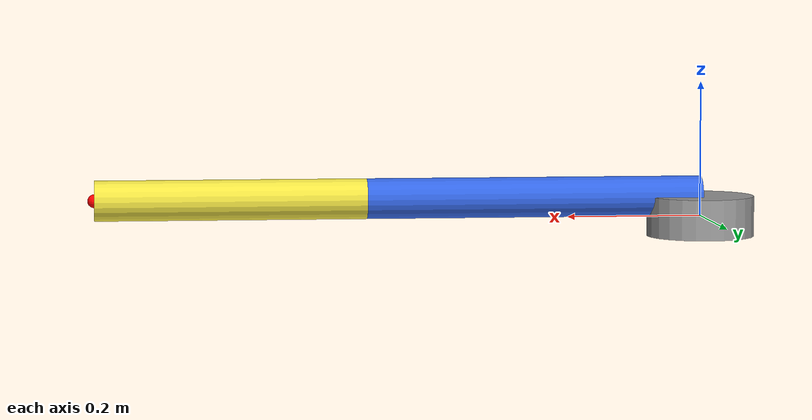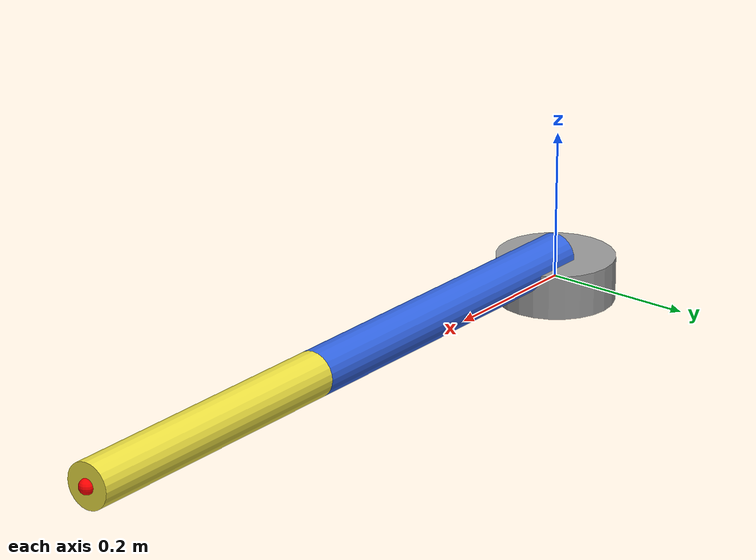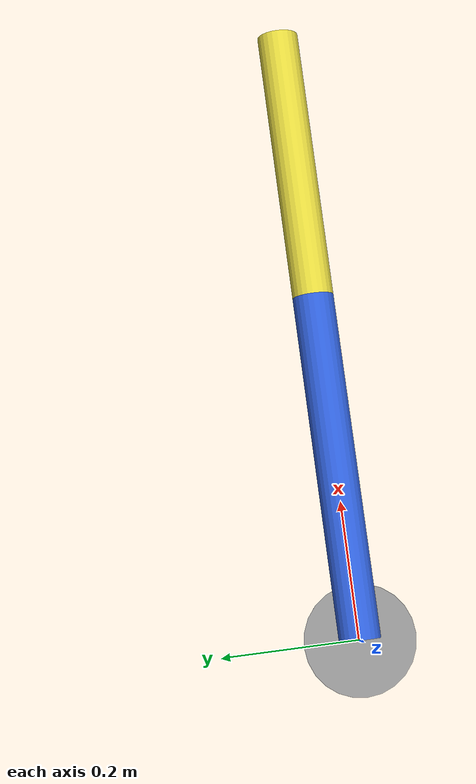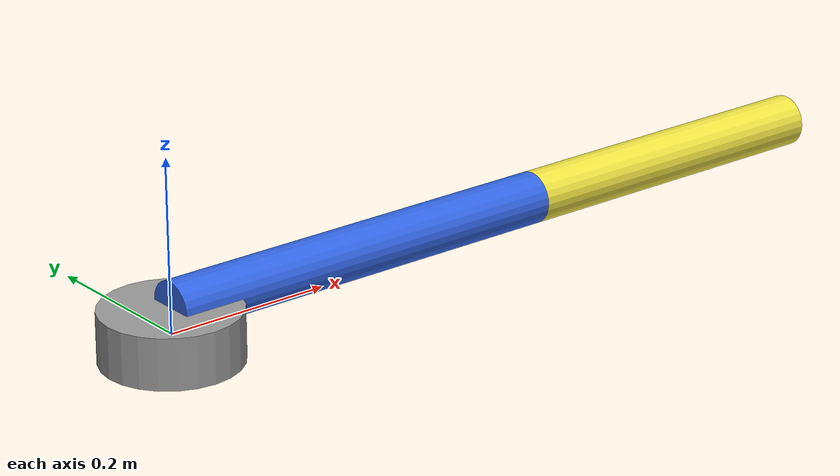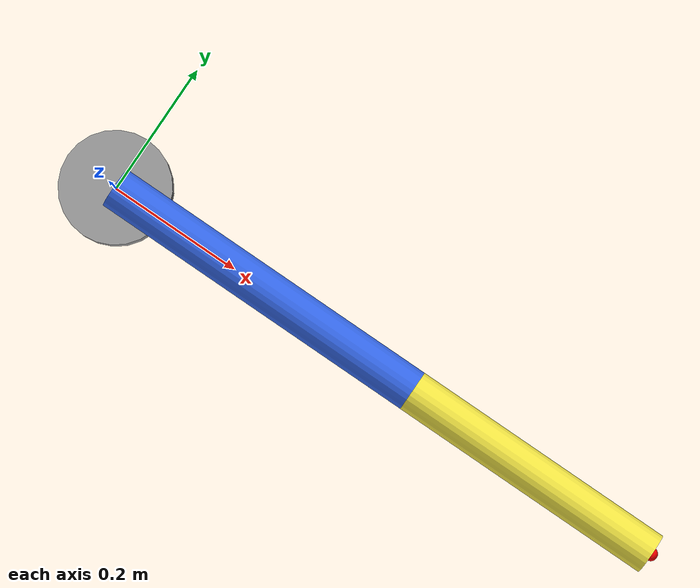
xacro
<?xml version="1.0"?>
<robot xmlns:xacro="http://www.ros.org/wiki/xacro" name="rr_arm">
<xacro:arg name="is_ignition" default="true"/>
<xacro:include filename="$(find rr_arm)/urdf/rr_arm_gazebo.xacro"/>

  <!-- Include ros2_control Plugins -->
<xacro:include filename="$(find rr_arm)/urdf/rr_arm_ros2_control.xacro" />
<!-- Tunables -->
  <xacro:property name="L1" value="0.5"/>   <!-- link1 length (m) -->
  <xacro:property name="L2" value="0.4"/>   <!-- link2 length (m) -->
  <xacro:property name="R"  value="0.03"/>  <!-- link radius (m) -->
  <xacro:property name="m1" value="1.0"/>   <!-- link1 mass (kg) -->
  <xacro:property name="m2" value="0.8"/>   <!-- link2 mass (kg) -->

  <!-- Simple material -->
  <material name="gray"><color rgba="0.6 0.6 0.6 1.0"/></material>
  <material name="blue"><color rgba="0.2 0.4 0.9 1.0"/></material>

  <!-- World & base -->
  <link name="world"/>
  <joint name="world_to_base" type="fixed">
    <parent link="world"/>
    <child link="base_link"/>
    <origin xyz="0 0 0" rpy="0 0 0"/>
  </joint>

  <link name="base_link">
    <visual>
      <geometry><cylinder length="0.06" radius="0.08"/></geometry>
      <origin xyz="0 0 0" rpy="0 0 0"/>
      <material name="gray"/>
    </visual>
    <collision>
      <geometry><cylinder length="0.06" radius="0.08"/></geometry>
      <origin xyz="0 0 0" rpy="0 0 0"/>

    </collision>
    <inertial>
    <mass value="1.0"/>
    <inertia ixx="1" iyy="1" izz="1" ixy="0" ixz="0" iyz="0"/>
    </inertial>
  </link>

<link name="link1">
  <visual>
    <geometry><cylinder length="${L1}" radius="${R}"/></geometry>
    <!-- move center to L1/2 on X and rotate cylinder axis Z→X -->
    <origin xyz="${L1/2} 0 0" rpy="0 1.5708 0"/>
    <material name="blue"/>
  </visual>
  <collision>
    <geometry><cylinder length="${L1}" radius="${R}"/></geometry>
    <origin xyz="${L1/2} 0 0" rpy="0 1.5708 0"/>
  </collision>
  <inertial>
    <mass value="1.0"/>
    <!-- keep CoM aligned with geometry -->
    <origin xyz="${L1/2} 0 0" rpy="0 1.5708 0"/>
    <inertia ixx="1" iyy="1" izz="1" ixy="0" ixz="0" iyz="0"/>
  </inertial>
</link>

  <joint name="joint1" type="revolute">
    <parent link="base_link"/>
    <child link="link1"/>
    <origin xyz="0 0 0.03" rpy="0 0 0"/>
    <axis xyz="0 0 1"/>
    <limit lower="-6.28318" upper="6.28318" effort="10" velocity="3.0"/>
    <dynamics damping="0.1"/>
  </joint>

<link name="link2">
  <visual>
    <geometry><cylinder length="${L2}" radius="${R}"/></geometry>
    <origin xyz="${L2/2} 0 0" rpy="0 1.5708 0"/>
  </visual>
  <collision>
    <geometry><cylinder length="${L2}" radius="${R}"/></geometry>
    <origin xyz="${L2/2} 0 0" rpy="0 1.5708 0"/>
  </collision>
  <inertial>
    <mass value="1.0"/>
    <origin xyz="${L2/2} 0 0" rpy="0 1.5708 0"/>
    <inertia ixx="1" iyy="1" izz="1" ixy="0" ixz="0" iyz="0"/>
  </inertial>
</link>

<joint name="joint2" type="revolute">
  <parent link="link1"/>
  <child link="link2"/>
  <origin xyz="${L1} 0 0"/>
  <axis xyz="0 0 1"/>
  <limit lower="-6.28318" upper="6.28318" effort="10" velocity="3.0"/>
</joint>
<!-- ===== End-effector frame for tracing ===== -->
<link name="ee_link">
  <visual>
    <origin xyz="0 0 0"/>
    <geometry><sphere radius="0.01"/></geometry>
    <material name="ee_color"><color rgba="1 0 0 1"/></material>
  </visual>
  <collision>
    <geometry><sphere radius="0.01"/></geometry>
  </collision>
  <inertial>
    <mass value="1e-4"/>
    <inertia ixx="1e-8" iyy="1e-8" izz="1e-8" ixy="0" ixz="0" iyz="0"/>
  </inertial>
</link>

<!-- Fixed joint placing ee_link at the *tip* of link2 (links run along +X) -->
<joint name="joint_ee" type="fixed">
  <parent link="link2"/>
  <child link="ee_link"/>
  <origin xyz="${L2} 0 0" rpy="0 0 0"/>
</joint>

</robot>
